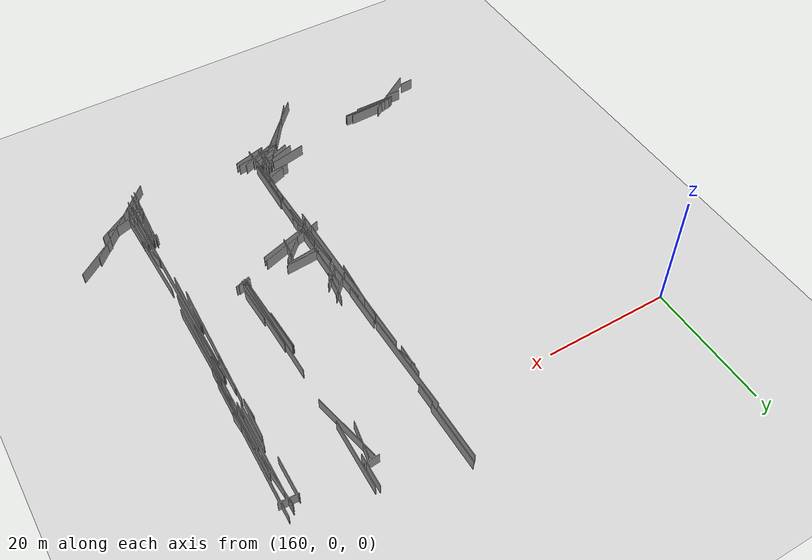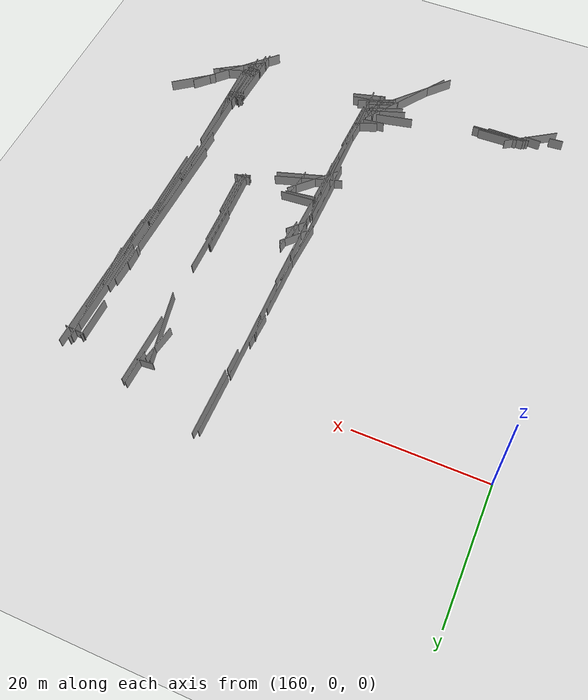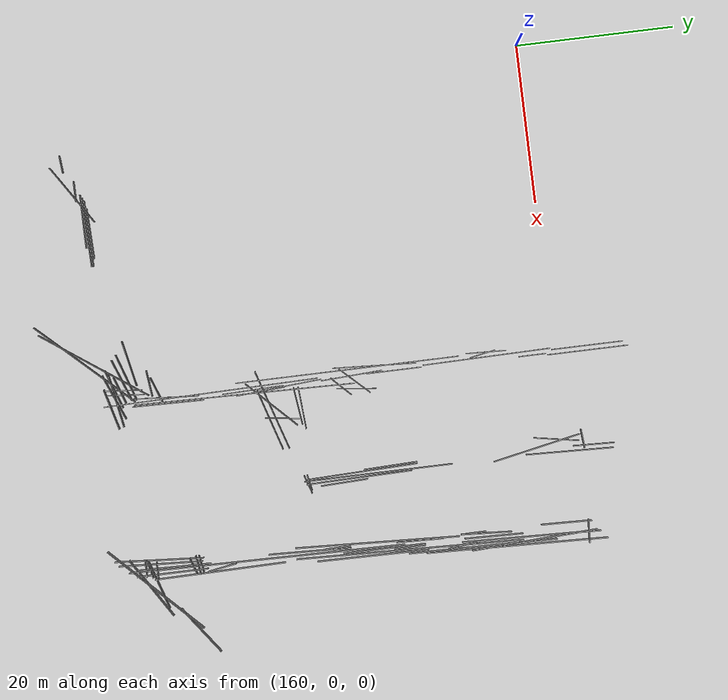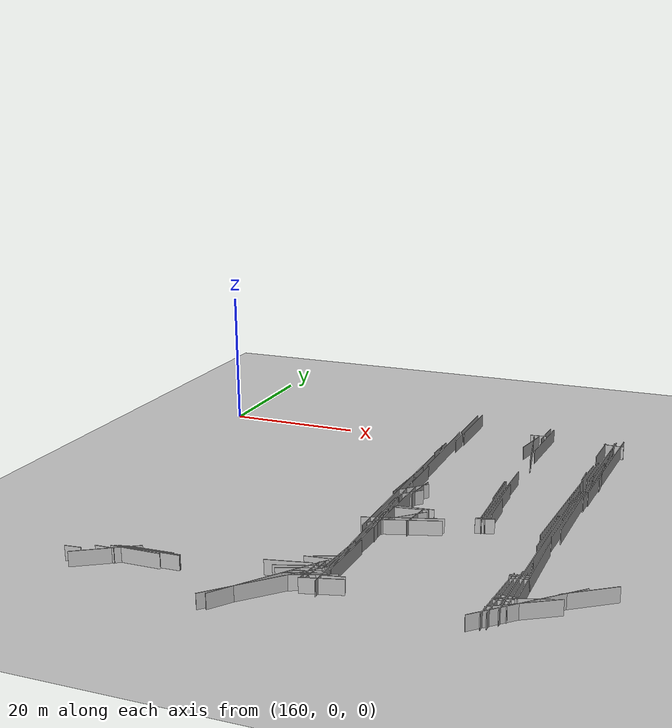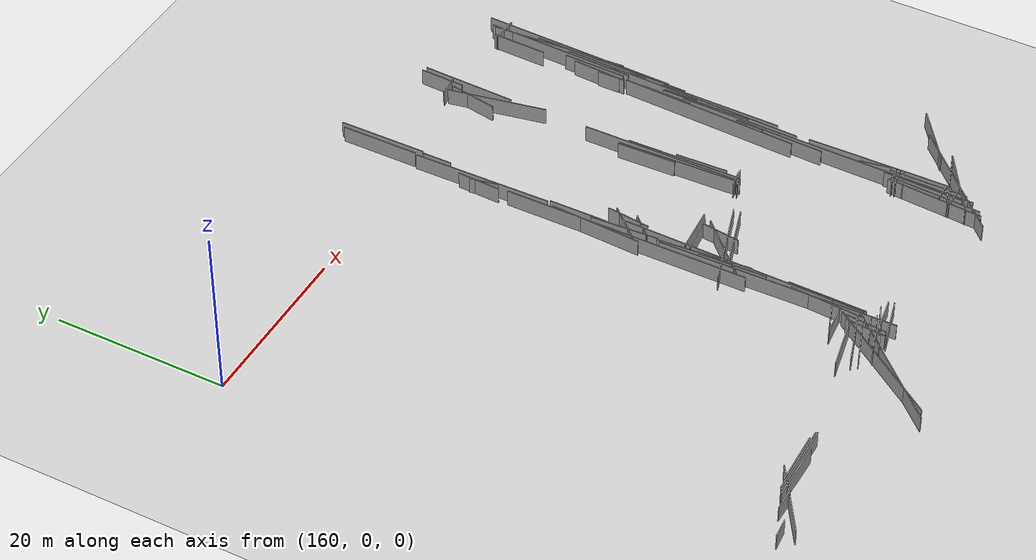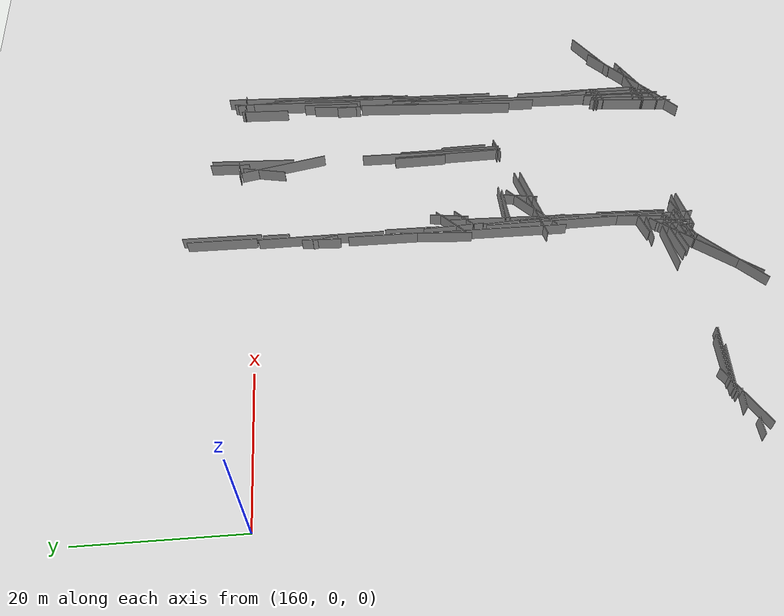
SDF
<sdf version="1.6">
 <world name="slam_world">
  <model name="ground_plane">
   <static>true</static>
   <link name="link">
    <collision name="collision">
     <geometry><plane><normal>0 0 1</normal><size>100 100</size></plane></geometry>
    </collision>
    <visual name="visual">
     <geometry><plane><normal>0 0 1</normal><size>100 100</size></plane></geometry>
     <material>
      <ambient>0.8 0.8 0.8 1</ambient>
      <diffuse>0.8 0.8 0.8 1</diffuse>
      <specular>0.8 0.8 0.8 1</specular>
     </material>
    </visual>
   </link>
  </model>
  <model name="wall_0">
   <static>true</static>
   <pose>221.60000000000002 -20.999999999999993 1.0 0 0 1.5360880485696218</pose>
   <link name="link">
    <collision name="collision">
     <geometry><box><size>28.817355881482253 0.1 2.0</size></box></geometry>
    </collision>
    <visual name="visual">
     <geometry><box><size>28.817355881482253 0.1 2.0</size></box></geometry>
     <material><ambient>0.5 0.5 0.5 1</ambient><diffuse>0.7 0.7 0.7 1</diffuse></material>
    </visual>
   </link>
  </model>
  <model name="wall_4">
   <static>true</static>
   <pose>221.8 -5.599999999999987 1.0 0 0 1.5367186152078876</pose>
   <link name="link">
    <collision name="collision">
     <geometry><box><size>17.610224302944022 0.1 2.0</size></box></geometry>
    </collision>
    <visual name="visual">
     <geometry><box><size>17.610224302944022 0.1 2.0</size></box></geometry>
     <material><ambient>0.5 0.5 0.5 1</ambient><diffuse>0.7 0.7 0.7 1</diffuse></material>
    </visual>
   </link>
  </model>
  <model name="wall_14">
   <static>true</static>
   <pose>198.70000000000005 4.300000000000011 1.0 0 0 1.5707963267948966</pose>
   <link name="link">
    <collision name="collision"><geometry><box><size>9.0 0.1 2.0</size></box></geometry></collision>
    <visual name="visual">
     <geometry><box><size>9.0 0.1 2.0</size></box></geometry>
     <material><ambient>0.5 0.5 0.5 1</ambient><diffuse>0.7 0.7 0.7 1</diffuse></material>
    </visual>
   </link>
  </model>
  <model name="wall_25">
   <static>true</static>
   <pose>198.90000000000003 -20.299999999999997 1.0 0 0 1.5707963267948966</pose>
   <link name="link">
    <collision name="collision"><geometry><box><size>7.0 0.1 2.0</size></box></geometry></collision>
    <visual name="visual">
     <geometry><box><size>7.0 0.1 2.0</size></box></geometry>
     <material><ambient>0.5 0.5 0.5 1</ambient><diffuse>0.7 0.7 0.7 1</diffuse></material>
    </visual>
   </link>
  </model>
  <model name="wall_32">
   <static>true</static>
   <pose>198.10000000000002 -26.199999999999996 1.0 0 0 1.5707963267948966</pose>
   <link name="link">
    <collision name="collision"><geometry><box><size>28.39999999999999 0.1 2.0</size></box></geometry></collision>
    <visual name="visual">
     <geometry><box><size>28.39999999999999 0.1 2.0</size></box></geometry>
     <material><ambient>0.5 0.5 0.5 1</ambient><diffuse>0.7 0.7 0.7 1</diffuse></material>
    </visual>
   </link>
  </model>
  <model name="wall_54">
   <static>true</static>
   <pose>220.60000000000002 -39.099999999999994 1.0 0 0 1.5536551486562873</pose>
   <link name="link">
    <collision name="collision">
     <geometry><box><size>35.005142479355804 0.1 2.0</size></box></geometry>
    </collision>
    <visual name="visual">
     <geometry><box><size>35.005142479355804 0.1 2.0</size></box></geometry>
     <material><ambient>0.5 0.5 0.5 1</ambient><diffuse>0.7 0.7 0.7 1</diffuse></material>
    </visual>
   </link>
  </model>
  <model name="wall_58">
   <static>true</static>
   <pose>221.20000000000002 -10.299999999999997 1.0 0 0 1.5437758776076334</pose>
   <link name="link">
    <collision name="collision"><geometry><box><size>7.402702209328704 0.1 2.0</size></box></geometry></collision>
    <visual name="visual">
     <geometry><box><size>7.402702209328704 0.1 2.0</size></box></geometry>
     <material><ambient>0.5 0.5 0.5 1</ambient><diffuse>0.7 0.7 0.7 1</diffuse></material>
    </visual>
   </link>
  </model>
  <model name="wall_69">
   <static>true</static>
   <pose>198.90000000000003 -43.6 1.0 0 0 -1.556091504417046</pose>
   <link name="link">
    <collision name="collision">
     <geometry><box><size>27.202941017470888 0.1 2.0</size></box></geometry>
    </collision>
    <visual name="visual">
     <geometry><box><size>27.202941017470888 0.1 2.0</size></box></geometry>
     <material><ambient>0.5 0.5 0.5 1</ambient><diffuse>0.7 0.7 0.7 1</diffuse></material>
    </visual>
   </link>
  </model>
  <model name="wall_121">
   <static>true</static>
   <pose>220.4 -48.4 1.0 0 0 0.3487710035839075</pose>
   <link name="link">
    <collision name="collision">
     <geometry><box><size>2.3409399821439134 0.1 2.0</size></box></geometry>
    </collision>
    <visual name="visual">
     <geometry><box><size>2.3409399821439134 0.1 2.0</size></box></geometry>
     <material><ambient>0.5 0.5 0.5 1</ambient><diffuse>0.7 0.7 0.7 1</diffuse></material>
    </visual>
   </link>
  </model>
  <model name="wall_123">
   <static>true</static>
   <pose>198.60000000000002 -8.5 1.0 0 0 -1.5584512749506694</pose>
   <link name="link">
    <collision name="collision">
     <geometry><box><size>16.201234520862897 0.1 2.0</size></box></geometry>
    </collision>
    <visual name="visual">
     <geometry><box><size>16.201234520862897 0.1 2.0</size></box></geometry>
     <material><ambient>0.5 0.5 0.5 1</ambient><diffuse>0.7 0.7 0.7 1</diffuse></material>
    </visual>
   </link>
  </model>
  <model name="wall_134">
   <static>true</static>
   <pose>220.60000000000002 -0.9999999999999858 1.0 0 0 1.5395564933646213</pose>
   <link name="link">
    <collision name="collision"><geometry><box><size>6.403124237432856 0.1 2.0</size></box></geometry></collision>
    <visual name="visual">
     <geometry><box><size>6.403124237432856 0.1 2.0</size></box></geometry>
     <material><ambient>0.5 0.5 0.5 1</ambient><diffuse>0.7 0.7 0.7 1</diffuse></material>
    </visual>
   </link>
  </model>
  <model name="wall_147">
   <static>true</static>
   <pose>220.70000000000002 -11.199999999999996 1.0 0 0 1.508377516798934</pose>
   <link name="link">
    <collision name="collision"><geometry><box><size>6.412487816752552 0.1 2.0</size></box></geometry></collision>
    <visual name="visual">
     <geometry><box><size>6.412487816752552 0.1 2.0</size></box></geometry>
     <material><ambient>0.5 0.5 0.5 1</ambient><diffuse>0.7 0.7 0.7 1</diffuse></material>
    </visual>
   </link>
  </model>
  <model name="wall_192">
   <static>true</static>
   <pose>198.00000000000003 -22.699999999999996 1.0 0 0 1.5142528898500824</pose>
   <link name="link">
    <collision name="collision">
     <geometry><box><size>10.616967551989605 0.1 2.0</size></box></geometry>
    </collision>
    <visual name="visual">
     <geometry><box><size>10.616967551989605 0.1 2.0</size></box></geometry>
     <material><ambient>0.5 0.5 0.5 1</ambient><diffuse>0.7 0.7 0.7 1</diffuse></material>
    </visual>
   </link>
  </model>
  <model name="wall_203">
   <static>true</static>
   <pose>195.70000000000002 -54.0 1.0 0 0 0.32175055439663935</pose>
   <link name="link">
    <collision name="collision"><geometry><box><size>6.324555320336812 0.1 2.0</size></box></geometry></collision>
    <visual name="visual">
     <geometry><box><size>6.324555320336812 0.1 2.0</size></box></geometry>
     <material><ambient>0.5 0.5 0.5 1</ambient><diffuse>0.7 0.7 0.7 1</diffuse></material>
    </visual>
   </link>
  </model>
  <model name="wall_210">
   <static>true</static>
   <pose>176.9 -56.699999999999996 1.0 0 0 0.02272336084164136</pose>
   <link name="link">
    <collision name="collision"><geometry><box><size>8.802272433866166 0.1 2.0</size></box></geometry></collision>
    <visual name="visual">
     <geometry><box><size>8.802272433866166 0.1 2.0</size></box></geometry>
     <material><ambient>0.5 0.5 0.5 1</ambient><diffuse>0.7 0.7 0.7 1</diffuse></material>
    </visual>
   </link>
  </model>
  <model name="wall_216">
   <static>true</static>
   <pose>199.3 4.300000000000011 1.0 0 0 1.5707963267948966</pose>
   <link name="link">
    <collision name="collision">
     <geometry><box><size>10.199999999999989 0.1 2.0</size></box></geometry>
    </collision>
    <visual name="visual">
     <geometry><box><size>10.199999999999989 0.1 2.0</size></box></geometry>
     <material><ambient>0.5 0.5 0.5 1</ambient><diffuse>0.7 0.7 0.7 1</diffuse></material>
    </visual>
   </link>
  </model>
  <model name="wall_227">
   <static>true</static>
   <pose>220.4 -53.0 1.0 0 0 0.0</pose>
   <link name="link">
    <collision name="collision">
     <geometry><box><size>2.1999999999999886 0.1 2.0</size></box></geometry>
    </collision>
    <visual name="visual">
     <geometry><box><size>2.1999999999999886 0.1 2.0</size></box></geometry>
     <material><ambient>0.5 0.5 0.5 1</ambient><diffuse>0.7 0.7 0.7 1</diffuse></material>
    </visual>
   </link>
  </model>
  <model name="wall_228">
   <static>true</static>
   <pose>199.10000000000002 -2.6999999999999957 1.0 0 0 -1.5707963267948966</pose>
   <link name="link">
    <collision name="collision">
     <geometry><box><size>3.3999999999999915 0.1 2.0</size></box></geometry>
    </collision>
    <visual name="visual">
     <geometry><box><size>3.3999999999999915 0.1 2.0</size></box></geometry>
     <material><ambient>0.5 0.5 0.5 1</ambient><diffuse>0.7 0.7 0.7 1</diffuse></material>
    </visual>
   </link>
  </model>
  <model name="wall_233">
   <static>true</static>
   <pose>222.50000000000003 -53.99999999999999 1.0 0 0 0.5633162614919699</pose>
   <link name="link">
    <collision name="collision"><geometry><box><size>8.988882021697663 0.1 2.0</size></box></geometry></collision>
    <visual name="visual">
     <geometry><box><size>8.988882021697663 0.1 2.0</size></box></geometry>
     <material><ambient>0.5 0.5 0.5 1</ambient><diffuse>0.7 0.7 0.7 1</diffuse></material>
    </visual>
   </link>
  </model>
  <model name="wall_235">
   <static>true</static>
   <pose>193.50000000000003 -58.99999999999999 1.0 0 0 0.8210972760767721</pose>
   <link name="link">
    <collision name="collision">
     <geometry><box><size>15.849290204927174 0.1 2.0</size></box></geometry>
    </collision>
    <visual name="visual">
     <geometry><box><size>15.849290204927174 0.1 2.0</size></box></geometry>
     <material><ambient>0.5 0.5 0.5 1</ambient><diffuse>0.7 0.7 0.7 1</diffuse></material>
    </visual>
   </link>
  </model>
  <model name="wall_239">
   <static>true</static>
   <pose>199.20000000000002 -38.29999999999999 1.0 0 0 -1.5451609182732207</pose>
   <link name="link">
    <collision name="collision"><geometry><box><size>7.80256368125246 0.1 2.0</size></box></geometry></collision>
    <visual name="visual">
     <geometry><box><size>7.80256368125246 0.1 2.0</size></box></geometry>
     <material><ambient>0.5 0.5 0.5 1</ambient><diffuse>0.7 0.7 0.7 1</diffuse></material>
    </visual>
   </link>
  </model>
  <model name="wall_245">
   <static>true</static>
   <pose>211.10000000000002 -25.799999999999997 1.0 0 0 -1.5422326689561383</pose>
   <link name="link">
    <collision name="collision">
     <geometry><box><size>14.005713120009275 0.1 2.0</size></box></geometry>
    </collision>
    <visual name="visual">
     <geometry><box><size>14.005713120009275 0.1 2.0</size></box></geometry>
     <material><ambient>0.5 0.5 0.5 1</ambient><diffuse>0.7 0.7 0.7 1</diffuse></material>
    </visual>
   </link>
  </model>
  <model name="wall_257">
   <static>true</static>
   <pose>220.3 -29.999999999999993 1.0 0 0 1.5707963267948966</pose>
   <link name="link">
    <collision name="collision"><geometry><box><size>3.200000000000003 0.1 2.0</size></box></geometry></collision>
    <visual name="visual">
     <geometry><box><size>3.200000000000003 0.1 2.0</size></box></geometry>
     <material><ambient>0.5 0.5 0.5 1</ambient><diffuse>0.7 0.7 0.7 1</diffuse></material>
    </visual>
   </link>
  </model>
  <model name="wall_258">
   <static>true</static>
   <pose>220.3 -47.8 1.0 0 0 0.16514867741463068</pose>
   <link name="link">
    <collision name="collision">
     <geometry><box><size>2.4331050121192663 0.1 2.0</size></box></geometry>
    </collision>
    <visual name="visual">
     <geometry><box><size>2.4331050121192663 0.1 2.0</size></box></geometry>
     <material><ambient>0.5 0.5 0.5 1</ambient><diffuse>0.7 0.7 0.7 1</diffuse></material>
    </visual>
   </link>
  </model>
  <model name="wall_273">
   <static>true</static>
   <pose>222.3 -11.79999999999999 1.0 0 0 1.5495229407708366</pose>
   <link name="link">
    <collision name="collision"><geometry><box><size>18.80425483766905 0.1 2.0</size></box></geometry></collision>
    <visual name="visual">
     <geometry><box><size>18.80425483766905 0.1 2.0</size></box></geometry>
     <material><ambient>0.5 0.5 0.5 1</ambient><diffuse>0.7 0.7 0.7 1</diffuse></material>
    </visual>
   </link>
  </model>
  <model name="wall_290">
   <static>true</static>
   <pose>199.60000000000002 -49.099999999999994 1.0 0 0 1.5485777614681726</pose>
   <link name="link">
    <collision name="collision"><geometry><box><size>9.00222194794152 0.1 2.0</size></box></geometry></collision>
    <visual name="visual">
     <geometry><box><size>9.00222194794152 0.1 2.0</size></box></geometry>
     <material><ambient>0.5 0.5 0.5 1</ambient><diffuse>0.7 0.7 0.7 1</diffuse></material>
    </visual>
   </link>
  </model>
  <model name="wall_300">
   <static>true</static>
   <pose>168.00000000000003 -58.9 1.0 0 0 0.09065988720074686</pose>
   <link name="link">
    <collision name="collision"><geometry><box><size>2.209072203437441 0.1 2.0</size></box></geometry></collision>
    <visual name="visual">
     <geometry><box><size>2.209072203437441 0.1 2.0</size></box></geometry>
     <material><ambient>0.5 0.5 0.5 1</ambient><diffuse>0.7 0.7 0.7 1</diffuse></material>
    </visual>
   </link>
  </model>
  <model name="wall_306">
   <static>true</static>
   <pose>221.4 -45.099999999999994 1.0 0 0 -1.5587487169407113</pose>
   <link name="link">
    <collision name="collision"><geometry><box><size>16.6012047755577 0.1 2.0</size></box></geometry></collision>
    <visual name="visual">
     <geometry><box><size>16.6012047755577 0.1 2.0</size></box></geometry>
     <material><ambient>0.5 0.5 0.5 1</ambient><diffuse>0.7 0.7 0.7 1</diffuse></material>
    </visual>
   </link>
  </model>
  <model name="wall_309">
   <static>true</static>
   <pose>220.5 -12.499999999999993 1.0 0 0 1.5707963267948966</pose>
   <link name="link">
    <collision name="collision">
     <geometry><box><size>2.6000000000000085 0.1 2.0</size></box></geometry>
    </collision>
    <visual name="visual">
     <geometry><box><size>2.6000000000000085 0.1 2.0</size></box></geometry>
     <material><ambient>0.5 0.5 0.5 1</ambient><diffuse>0.7 0.7 0.7 1</diffuse></material>
    </visual>
   </link>
  </model>
  <model name="wall_321">
   <static>true</static>
   <pose>199.50000000000003 -56.3 1.0 0 0 0.2629947316809211</pose>
   <link name="link">
    <collision name="collision"><geometry><box><size>5.385164807134495 0.1 2.0</size></box></geometry></collision>
    <visual name="visual">
     <geometry><box><size>5.385164807134495 0.1 2.0</size></box></geometry>
     <material><ambient>0.5 0.5 0.5 1</ambient><diffuse>0.7 0.7 0.7 1</diffuse></material>
    </visual>
   </link>
  </model>
  <model name="wall_327">
   <static>true</static>
   <pose>220.20000000000005 -24.999999999999993 1.0 0 0 1.522756393947134</pose>
   <link name="link">
    <collision name="collision">
     <geometry><box><size>20.824024587000466 0.1 2.0</size></box></geometry>
    </collision>
    <visual name="visual">
     <geometry><box><size>20.824024587000466 0.1 2.0</size></box></geometry>
     <material><ambient>0.5 0.5 0.5 1</ambient><diffuse>0.7 0.7 0.7 1</diffuse></material>
    </visual>
   </link>
  </model>
  <model name="wall_333">
   <static>true</static>
   <pose>220.90000000000003 -51.099999999999994 1.0 0 0 1.5707963267948966</pose>
   <link name="link">
    <collision name="collision"><geometry><box><size>9.0 0.1 2.0</size></box></geometry></collision>
    <visual name="visual">
     <geometry><box><size>9.0 0.1 2.0</size></box></geometry>
     <material><ambient>0.5 0.5 0.5 1</ambient><diffuse>0.7 0.7 0.7 1</diffuse></material>
    </visual>
   </link>
  </model>
  <model name="wall_342">
   <static>true</static>
   <pose>220.00000000000003 -54.39999999999999 1.0 0 0 0.0</pose>
   <link name="link">
    <collision name="collision">
     <geometry><box><size>2.1999999999999886 0.1 2.0</size></box></geometry>
    </collision>
    <visual name="visual">
     <geometry><box><size>2.1999999999999886 0.1 2.0</size></box></geometry>
     <material><ambient>0.5 0.5 0.5 1</ambient><diffuse>0.7 0.7 0.7 1</diffuse></material>
    </visual>
   </link>
  </model>
  <model name="wall_343">
   <static>true</static>
   <pose>177.10000000000002 -56.49999999999999 1.0 0 0 0.023805026185070344</pose>
   <link name="link">
    <collision name="collision"><geometry><box><size>8.402380615039979 0.1 2.0</size></box></geometry></collision>
    <visual name="visual">
     <geometry><box><size>8.402380615039979 0.1 2.0</size></box></geometry>
     <material><ambient>0.5 0.5 0.5 1</ambient><diffuse>0.7 0.7 0.7 1</diffuse></material>
    </visual>
   </link>
  </model>
  <model name="wall_384">
   <static>true</static>
   <pose>198.50000000000003 -55.6 1.0 0 0 0.17467219900823983</pose>
   <link name="link">
    <collision name="collision"><geometry><box><size>6.905070600652839 0.1 2.0</size></box></geometry></collision>
    <visual name="visual">
     <geometry><box><size>6.905070600652839 0.1 2.0</size></box></geometry>
     <material><ambient>0.5 0.5 0.5 1</ambient><diffuse>0.7 0.7 0.7 1</diffuse></material>
    </visual>
   </link>
  </model>
  <model name="wall_420">
   <static>true</static>
   <pose>221.10000000000002 -24.199999999999996 1.0 0 0 1.5707963267948966</pose>
   <link name="link">
    <collision name="collision">
     <geometry><box><size>10.399999999999991 0.1 2.0</size></box></geometry>
    </collision>
    <visual name="visual">
     <geometry><box><size>10.399999999999991 0.1 2.0</size></box></geometry>
     <material><ambient>0.5 0.5 0.5 1</ambient><diffuse>0.7 0.7 0.7 1</diffuse></material>
    </visual>
   </link>
  </model>
  <model name="wall_432">
   <static>true</static>
   <pose>211.5 -23.79999999999999 1.0 0 0 1.5707963267948966</pose>
   <link name="link">
    <collision name="collision">
     <geometry><box><size>18.799999999999997 0.1 2.0</size></box></geometry>
    </collision>
    <visual name="visual">
     <geometry><box><size>18.799999999999997 0.1 2.0</size></box></geometry>
     <material><ambient>0.5 0.5 0.5 1</ambient><diffuse>0.7 0.7 0.7 1</diffuse></material>
    </visual>
   </link>
  </model>
  <model name="wall_452">
   <static>true</static>
   <pose>198.8 -49.49999999999999 1.0 0 0 1.5011417530663258</pose>
   <link name="link">
    <collision name="collision"><geometry><box><size>8.620904824900933 0.1 2.0</size></box></geometry></collision>
    <visual name="visual">
     <geometry><box><size>8.620904824900933 0.1 2.0</size></box></geometry>
     <material><ambient>0.5 0.5 0.5 1</ambient><diffuse>0.7 0.7 0.7 1</diffuse></material>
    </visual>
   </link>
  </model>
  <model name="wall_486">
   <static>true</static>
   <pose>220.10000000000002 -53.9 1.0 0 0 0.24497866312686972</pose>
   <link name="link">
    <collision name="collision"><geometry><box><size>2.473863375370576 0.1 2.0</size></box></geometry></collision>
    <visual name="visual">
     <geometry><box><size>2.473863375370576 0.1 2.0</size></box></geometry>
     <material><ambient>0.5 0.5 0.5 1</ambient><diffuse>0.7 0.7 0.7 1</diffuse></material>
    </visual>
   </link>
  </model>
  <model name="wall_506">
   <static>true</static>
   <pose>197.3 -54.49999999999999 1.0 0 0 1.4840579881189166</pose>
   <link name="link">
    <collision name="collision"><geometry><box><size>4.617358552246085 0.1 2.0</size></box></geometry></collision>
    <visual name="visual">
     <geometry><box><size>4.617358552246085 0.1 2.0</size></box></geometry>
     <material><ambient>0.5 0.5 0.5 1</ambient><diffuse>0.7 0.7 0.7 1</diffuse></material>
    </visual>
   </link>
  </model>
  <model name="wall_517">
   <static>true</static>
   <pose>197.0 -55.699999999999996 1.0 0 0 0.34555558058171165</pose>
   <link name="link">
    <collision name="collision"><geometry><box><size>5.314132102234568 0.1 2.0</size></box></geometry></collision>
    <visual name="visual">
     <geometry><box><size>5.314132102234568 0.1 2.0</size></box></geometry>
     <material><ambient>0.5 0.5 0.5 1</ambient><diffuse>0.7 0.7 0.7 1</diffuse></material>
    </visual>
   </link>
  </model>
  <model name="wall_521">
   <static>true</static>
   <pose>211.90000000000003 -32.79999999999999 1.0 0 0 0.32175055439664396</pose>
   <link name="link">
    <collision name="collision"><geometry><box><size>2.529822128134681 0.1 2.0</size></box></geometry></collision>
    <visual name="visual">
     <geometry><box><size>2.529822128134681 0.1 2.0</size></box></geometry>
     <material><ambient>0.5 0.5 0.5 1</ambient><diffuse>0.7 0.7 0.7 1</diffuse></material>
    </visual>
   </link>
  </model>
  <model name="wall_525">
   <static>true</static>
   <pose>202.00000000000003 -36.199999999999996 1.0 0 0 0.30400093934014516</pose>
   <link name="link">
    <collision name="collision">
     <geometry><box><size>10.690182411914204 0.1 2.0</size></box></geometry>
    </collision>
    <visual name="visual">
     <geometry><box><size>10.690182411914204 0.1 2.0</size></box></geometry>
     <material><ambient>0.5 0.5 0.5 1</ambient><diffuse>0.7 0.7 0.7 1</diffuse></material>
    </visual>
   </link>
  </model>
  <model name="wall_539">
   <static>true</static>
   <pose>222.8 -53.5 1.0 0 0 0.7853981633974483</pose>
   <link name="link">
    <collision name="collision">
     <geometry><box><size>15.556349186104045 0.1 2.0</size></box></geometry>
    </collision>
    <visual name="visual">
     <geometry><box><size>15.556349186104045 0.1 2.0</size></box></geometry>
     <material><ambient>0.5 0.5 0.5 1</ambient><diffuse>0.7 0.7 0.7 1</diffuse></material>
    </visual>
   </link>
  </model>
  <model name="wall_545">
   <static>true</static>
   <pose>199.60000000000002 -39.39999999999999 1.0 0 0 1.5493710343463611</pose>
   <link name="link">
    <collision name="collision">
     <geometry><box><size>28.006427833624194 0.1 2.0</size></box></geometry>
    </collision>
    <visual name="visual">
     <geometry><box><size>28.006427833624194 0.1 2.0</size></box></geometry>
     <material><ambient>0.5 0.5 0.5 1</ambient><diffuse>0.7 0.7 0.7 1</diffuse></material>
    </visual>
   </link>
  </model>
  <model name="wall_556">
   <static>true</static>
   <pose>211.80000000000004 -26.299999999999997 1.0 0 0 -1.5558720618048125</pose>
   <link name="link">
    <collision name="collision">
     <geometry><box><size>13.401492454200769 0.1 2.0</size></box></geometry>
    </collision>
    <visual name="visual">
     <geometry><box><size>13.401492454200769 0.1 2.0</size></box></geometry>
     <material><ambient>0.5 0.5 0.5 1</ambient><diffuse>0.7 0.7 0.7 1</diffuse></material>
    </visual>
   </link>
  </model>
  <model name="wall_559">
   <static>true</static>
   <pose>211.70000000000002 0.5 1.0 0 0 1.534448705775873</pose>
   <link name="link">
    <collision name="collision"><geometry><box><size>11.00727032465361 0.1 2.0</size></box></geometry></collision>
    <visual name="visual">
     <geometry><box><size>11.00727032465361 0.1 2.0</size></box></geometry>
     <material><ambient>0.5 0.5 0.5 1</ambient><diffuse>0.7 0.7 0.7 1</diffuse></material>
    </visual>
   </link>
  </model>
  <model name="wall_570">
   <static>true</static>
   <pose>196.8 -51.199999999999996 1.0 0 0 0.11710874456686259</pose>
   <link name="link">
    <collision name="collision">
     <geometry><box><size>3.4234485537247146 0.1 2.0</size></box></geometry>
    </collision>
    <visual name="visual">
     <geometry><box><size>3.4234485537247146 0.1 2.0</size></box></geometry>
     <material><ambient>0.5 0.5 0.5 1</ambient><diffuse>0.7 0.7 0.7 1</diffuse></material>
    </visual>
   </link>
  </model>
  <model name="wall_582">
   <static>true</static>
   <pose>222.20000000000002 -53.0 1.0 0 0 0.3120421215625338</pose>
   <link name="link">
    <collision name="collision"><geometry><box><size>6.514598989960922 0.1 2.0</size></box></geometry></collision>
    <visual name="visual">
     <geometry><box><size>6.514598989960922 0.1 2.0</size></box></geometry>
     <material><ambient>0.5 0.5 0.5 1</ambient><diffuse>0.7 0.7 0.7 1</diffuse></material>
    </visual>
   </link>
  </model>
  <model name="wall_585">
   <static>true</static>
   <pose>222.70000000000002 -7.5 1.0 0 0 1.5360277349388138</pose>
   <link name="link">
    <collision name="collision">
     <geometry><box><size>23.013908837917995 0.1 2.0</size></box></geometry>
    </collision>
    <visual name="visual">
     <geometry><box><size>23.013908837917995 0.1 2.0</size></box></geometry>
     <material><ambient>0.5 0.5 0.5 1</ambient><diffuse>0.7 0.7 0.7 1</diffuse></material>
    </visual>
   </link>
  </model>
  <model name="wall_611">
   <static>true</static>
   <pose>210.80000000000004 -3.5999999999999943 1.0 0 0 -1.3768371795350043</pose>
   <link name="link">
    <collision name="collision">
     <geometry><box><size>11.414026458704207 0.1 2.0</size></box></geometry>
    </collision>
    <visual name="visual">
     <geometry><box><size>11.414026458704207 0.1 2.0</size></box></geometry>
     <material><ambient>0.5 0.5 0.5 1</ambient><diffuse>0.7 0.7 0.7 1</diffuse></material>
    </visual>
   </link>
  </model>
  <model name="wall_635">
   <static>true</static>
   <pose>219.10000000000002 -52.6 1.0 0 0 1.4994888620096103</pose>
   <link name="link">
    <collision name="collision"><geometry><box><size>11.22853507809456 0.1 2.0</size></box></geometry></collision>
    <visual name="visual">
     <geometry><box><size>11.22853507809456 0.1 2.0</size></box></geometry>
     <material><ambient>0.5 0.5 0.5 1</ambient><diffuse>0.7 0.7 0.7 1</diffuse></material>
    </visual>
   </link>
  </model>
  <model name="wall_642">
   <static>true</static>
   <pose>197.20000000000002 -54.99999999999999 1.0 0 0 0.3392926144540423</pose>
   <link name="link">
    <collision name="collision">
     <geometry><box><size>3.6055512754640224 0.1 2.0</size></box></geometry>
    </collision>
    <visual name="visual">
     <geometry><box><size>3.6055512754640224 0.1 2.0</size></box></geometry>
     <material><ambient>0.5 0.5 0.5 1</ambient><diffuse>0.7 0.7 0.7 1</diffuse></material>
    </visual>
   </link>
  </model>
  <model name="wall_644">
   <static>true</static>
   <pose>197.70000000000002 -50.4 1.0 0 0 0.3587706702705742</pose>
   <link name="link">
    <collision name="collision">
     <geometry><box><size>3.4176014981270026 0.1 2.0</size></box></geometry>
    </collision>
    <visual name="visual">
     <geometry><box><size>3.4176014981270026 0.1 2.0</size></box></geometry>
     <material><ambient>0.5 0.5 0.5 1</ambient><diffuse>0.7 0.7 0.7 1</diffuse></material>
    </visual>
   </link>
  </model>
  <model name="wall_646">
   <static>true</static>
   <pose>222.30000000000004 -5.199999999999989 1.0 0 0 -1.5208379310729532</pose>
   <link name="link">
    <collision name="collision"><geometry><box><size>16.01998751560063 0.1 2.0</size></box></geometry></collision>
    <visual name="visual">
     <geometry><box><size>16.01998751560063 0.1 2.0</size></box></geometry>
     <material><ambient>0.5 0.5 0.5 1</ambient><diffuse>0.7 0.7 0.7 1</diffuse></material>
    </visual>
   </link>
  </model>
  <model name="wall_653">
   <static>true</static>
   <pose>175.50000000000003 -57.0 1.0 0 0 0.0</pose>
   <link name="link">
    <collision name="collision"><geometry><box><size>6.800000000000011 0.1 2.0</size></box></geometry></collision>
    <visual name="visual">
     <geometry><box><size>6.800000000000011 0.1 2.0</size></box></geometry>
     <material><ambient>0.5 0.5 0.5 1</ambient><diffuse>0.7 0.7 0.7 1</diffuse></material>
    </visual>
   </link>
  </model>
  <model name="wall_692">
   <static>true</static>
   <pose>220.20000000000002 -50.79999999999999 1.0 0 0 1.5490606199531052</pose>
   <link name="link">
    <collision name="collision"><geometry><box><size>9.202173656261875 0.1 2.0</size></box></geometry></collision>
    <visual name="visual">
     <geometry><box><size>9.202173656261875 0.1 2.0</size></box></geometry>
     <material><ambient>0.5 0.5 0.5 1</ambient><diffuse>0.7 0.7 0.7 1</diffuse></material>
    </visual>
   </link>
  </model>
  <model name="wall_705">
   <static>true</static>
   <pose>210.0 -0.9999999999999929 1.0 0 0 1.3940874707248603</pose>
   <link name="link">
    <collision name="collision"><geometry><box><size>5.688585061331166 0.1 2.0</size></box></geometry></collision>
    <visual name="visual">
     <geometry><box><size>5.688585061331166 0.1 2.0</size></box></geometry>
     <material><ambient>0.5 0.5 0.5 1</ambient><diffuse>0.7 0.7 0.7 1</diffuse></material>
    </visual>
   </link>
  </model>
  <model name="wall_706">
   <static>true</static>
   <pose>200.60000000000002 -25.299999999999997 1.0 0 0 1.4513674007765536</pose>
   <link name="link">
    <collision name="collision">
     <geometry><box><size>5.0358713248056715 0.1 2.0</size></box></geometry>
    </collision>
    <visual name="visual">
     <geometry><box><size>5.0358713248056715 0.1 2.0</size></box></geometry>
     <material><ambient>0.5 0.5 0.5 1</ambient><diffuse>0.7 0.7 0.7 1</diffuse></material>
    </visual>
   </link>
  </model>
  <model name="wall_715">
   <static>true</static>
   <pose>199.20000000000002 -33.89999999999999 1.0 0 0 -1.5011417530663322</pose>
   <link name="link">
    <collision name="collision"><geometry><box><size>8.620904824900915 0.1 2.0</size></box></geometry></collision>
    <visual name="visual">
     <geometry><box><size>8.620904824900915 0.1 2.0</size></box></geometry>
     <material><ambient>0.5 0.5 0.5 1</ambient><diffuse>0.7 0.7 0.7 1</diffuse></material>
    </visual>
   </link>
  </model>
  <model name="wall_721">
   <static>true</static>
   <pose>212.20000000000002 -28.19999999999999 1.0 0 0 -1.5374753309166513</pose>
   <link name="link">
    <collision name="collision"><geometry><box><size>6.003332407921453 0.1 2.0</size></box></geometry></collision>
    <visual name="visual">
     <geometry><box><size>6.003332407921453 0.1 2.0</size></box></geometry>
     <material><ambient>0.5 0.5 0.5 1</ambient><diffuse>0.7 0.7 0.7 1</diffuse></material>
    </visual>
   </link>
  </model>
  <model name="wall_722">
   <static>true</static>
   <pose>199.50000000000003 -37.29999999999999 1.0 0 0 -1.5063694873693376</pose>
   <link name="link">
    <collision name="collision"><geometry><box><size>6.212889826803631 0.1 2.0</size></box></geometry></collision>
    <visual name="visual">
     <geometry><box><size>6.212889826803631 0.1 2.0</size></box></geometry>
     <material><ambient>0.5 0.5 0.5 1</ambient><diffuse>0.7 0.7 0.7 1</diffuse></material>
    </visual>
   </link>
  </model>
  <model name="wall_727">
   <static>true</static>
   <pose>220.3 -33.599999999999994 1.0 0 0 1.5323537367737108</pose>
   <link name="link">
    <collision name="collision">
     <geometry><box><size>10.407689465006156 0.1 2.0</size></box></geometry>
    </collision>
    <visual name="visual">
     <geometry><box><size>10.407689465006156 0.1 2.0</size></box></geometry>
     <material><ambient>0.5 0.5 0.5 1</ambient><diffuse>0.7 0.7 0.7 1</diffuse></material>
    </visual>
   </link>
  </model>
  <model name="wall_749">
   <static>true</static>
   <pose>221.80000000000004 -25.699999999999996 1.0 0 0 1.5567127509720373</pose>
   <link name="link">
    <collision name="collision">
     <geometry><box><size>14.201408380861388 0.1 2.0</size></box></geometry>
    </collision>
    <visual name="visual">
     <geometry><box><size>14.201408380861388 0.1 2.0</size></box></geometry>
     <material><ambient>0.5 0.5 0.5 1</ambient><diffuse>0.7 0.7 0.7 1</diffuse></material>
    </visual>
   </link>
  </model>
  <model name="wall_753">
   <static>true</static>
   <pose>211.20000000000002 3.6000000000000085 1.0 0 0 1.532353736773711</pose>
   <link name="link">
    <collision name="collision"><geometry><box><size>5.203844732503091 0.1 2.0</size></box></geometry></collision>
    <visual name="visual">
     <geometry><box><size>5.203844732503091 0.1 2.0</size></box></geometry>
     <material><ambient>0.5 0.5 0.5 1</ambient><diffuse>0.7 0.7 0.7 1</diffuse></material>
    </visual>
   </link>
  </model>
  <model name="wall_765">
   <static>true</static>
   <pose>198.20000000000002 -8.999999999999993 1.0 0 0 -1.3854483767992123</pose>
   <link name="link">
    <collision name="collision">
     <geometry><box><size>3.2557641192199376 0.1 2.0</size></box></geometry>
    </collision>
    <visual name="visual">
     <geometry><box><size>3.2557641192199376 0.1 2.0</size></box></geometry>
     <material><ambient>0.5 0.5 0.5 1</ambient><diffuse>0.7 0.7 0.7 1</diffuse></material>
    </visual>
   </link>
  </model>
  <model name="wall_771">
   <static>true</static>
   <pose>177.10000000000002 -56.3 1.0 0 0 0.031239833430266612</pose>
   <link name="link">
    <collision name="collision"><geometry><box><size>6.403124237432825 0.1 2.0</size></box></geometry></collision>
    <visual name="visual">
     <geometry><box><size>6.403124237432825 0.1 2.0</size></box></geometry>
     <material><ambient>0.5 0.5 0.5 1</ambient><diffuse>0.7 0.7 0.7 1</diffuse></material>
    </visual>
   </link>
  </model>
  <model name="wall_787">
   <static>true</static>
   <pose>193.70000000000002 -57.89999999999999 1.0 0 0 0.9549263748553707</pose>
   <link name="link">
    <collision name="collision">
     <geometry><box><size>15.926079241294756 0.1 2.0</size></box></geometry>
    </collision>
    <visual name="visual">
     <geometry><box><size>15.926079241294756 0.1 2.0</size></box></geometry>
     <material><ambient>0.5 0.5 0.5 1</ambient><diffuse>0.7 0.7 0.7 1</diffuse></material>
    </visual>
   </link>
  </model>
  <model name="wall_842">
   <static>true</static>
   <pose>221.00000000000003 -44.8 1.0 0 0 -1.4056476493802788</pose>
   <link name="link">
    <collision name="collision">
     <geometry><box><size>3.6496575181789206 0.1 2.0</size></box></geometry>
    </collision>
    <visual name="visual">
     <geometry><box><size>3.6496575181789206 0.1 2.0</size></box></geometry>
     <material><ambient>0.5 0.5 0.5 1</ambient><diffuse>0.7 0.7 0.7 1</diffuse></material>
    </visual>
   </link>
  </model>
  <model name="wall_857">
   <static>true</static>
   <pose>172.0 -57.99999999999999 1.0 0 0 0.575424650535286</pose>
   <link name="link">
    <collision name="collision"><geometry><box><size>8.820430828479958 0.1 2.0</size></box></geometry></collision>
    <visual name="visual">
     <geometry><box><size>8.820430828479958 0.1 2.0</size></box></geometry>
     <material><ambient>0.5 0.5 0.5 1</ambient><diffuse>0.7 0.7 0.7 1</diffuse></material>
    </visual>
   </link>
  </model>
  <model name="wall_866">
   <static>true</static>
   <pose>198.90000000000003 -25.699999999999996 1.0 0 0 -1.5195591593914808</pose>
   <link name="link">
    <collision name="collision"><geometry><box><size>7.81024967590665 0.1 2.0</size></box></geometry></collision>
    <visual name="visual">
     <geometry><box><size>7.81024967590665 0.1 2.0</size></box></geometry>
     <material><ambient>0.5 0.5 0.5 1</ambient><diffuse>0.7 0.7 0.7 1</diffuse></material>
    </visual>
   </link>
  </model>
  <model name="wall_870">
   <static>true</static>
   <pose>198.00000000000003 -8.5 1.0 0 0 1.5308176396716089</pose>
   <link name="link">
    <collision name="collision"><geometry><box><size>5.003998401278721 0.1 2.0</size></box></geometry></collision>
    <visual name="visual">
     <geometry><box><size>5.003998401278721 0.1 2.0</size></box></geometry>
     <material><ambient>0.5 0.5 0.5 1</ambient><diffuse>0.7 0.7 0.7 1</diffuse></material>
    </visual>
   </link>
  </model>
  <model name="wall_874">
   <static>true</static>
   <pose>201.3 -36.19999999999999 1.0 0 0 0.7853981633974483</pose>
   <link name="link">
    <collision name="collision"><geometry><box><size>8.48528137423857 0.1 2.0</size></box></geometry></collision>
    <visual name="visual">
     <geometry><box><size>8.48528137423857 0.1 2.0</size></box></geometry>
     <material><ambient>0.5 0.5 0.5 1</ambient><diffuse>0.7 0.7 0.7 1</diffuse></material>
    </visual>
   </link>
  </model>
  <model name="wall_881">
   <static>true</static>
   <pose>196.00000000000003 -54.599999999999994 1.0 0 0 0.3547056520109383</pose>
   <link name="link">
    <collision name="collision"><geometry><box><size>5.758472019555219 0.1 2.0</size></box></geometry></collision>
    <visual name="visual">
     <geometry><box><size>5.758472019555219 0.1 2.0</size></box></geometry>
     <material><ambient>0.5 0.5 0.5 1</ambient><diffuse>0.7 0.7 0.7 1</diffuse></material>
    </visual>
   </link>
  </model>
  <model name="wall_882">
   <static>true</static>
   <pose>201.9 -32.89999999999999 1.0 0 0 0.12435499454675998</pose>
   <link name="link">
    <collision name="collision"><geometry><box><size>4.83735464897914 0.1 2.0</size></box></geometry></collision>
    <visual name="visual">
     <geometry><box><size>4.83735464897914 0.1 2.0</size></box></geometry>
     <material><ambient>0.5 0.5 0.5 1</ambient><diffuse>0.7 0.7 0.7 1</diffuse></material>
    </visual>
   </link>
  </model>
  <model name="wall_885">
   <static>true</static>
   <pose>220.60000000000002 -19.599999999999994 1.0 0 0 1.5374753309166418</pose>
   <link name="link">
    <collision name="collision"><geometry><box><size>6.003332407921455 0.1 2.0</size></box></geometry></collision>
    <visual name="visual">
     <geometry><box><size>6.003332407921455 0.1 2.0</size></box></geometry>
     <material><ambient>0.5 0.5 0.5 1</ambient><diffuse>0.7 0.7 0.7 1</diffuse></material>
    </visual>
   </link>
  </model>
  <model name="wall_889">
   <static>true</static>
   <pose>198.00000000000003 -55.8 1.0 0 0 0.39234014421551594</pose>
   <link name="link">
    <collision name="collision"><geometry><box><size>6.276941930590099 0.1 2.0</size></box></geometry></collision>
    <visual name="visual">
     <geometry><box><size>6.276941930590099 0.1 2.0</size></box></geometry>
     <material><ambient>0.5 0.5 0.5 1</ambient><diffuse>0.7 0.7 0.7 1</diffuse></material>
    </visual>
   </link>
  </model>
  <model name="wall_893">
   <static>true</static>
   <pose>200.10000000000002 -27.199999999999996 1.0 0 0 0.7853981633974513</pose>
   <link name="link">
    <collision name="collision"><geometry><box><size>3.394112549695406 0.1 2.0</size></box></geometry></collision>
    <visual name="visual">
     <geometry><box><size>3.394112549695406 0.1 2.0</size></box></geometry>
     <material><ambient>0.5 0.5 0.5 1</ambient><diffuse>0.7 0.7 0.7 1</diffuse></material>
    </visual>
   </link>
  </model>
  <model name="wall_930">
   <static>true</static>
   <pose>228.5 -48.39999999999999 1.0 0 0 0.6327488350021837</pose>
   <link name="link">
    <collision name="collision"><geometry><box><size>7.440430095095313 0.1 2.0</size></box></geometry></collision>
    <visual name="visual">
     <geometry><box><size>7.440430095095313 0.1 2.0</size></box></geometry>
     <material><ambient>0.5 0.5 0.5 1</ambient><diffuse>0.7 0.7 0.7 1</diffuse></material>
    </visual>
   </link>
  </model>
  <model name="wall_947">
   <static>true</static>
   <pose>211.70000000000005 -32.599999999999994 1.0 0 0 0.1973955598498835</pose>
   <link name="link">
    <collision name="collision"><geometry><box><size>2.039607805437115 0.1 2.0</size></box></geometry></collision>
    <visual name="visual">
     <geometry><box><size>2.039607805437115 0.1 2.0</size></box></geometry>
     <material><ambient>0.5 0.5 0.5 1</ambient><diffuse>0.7 0.7 0.7 1</diffuse></material>
    </visual>
   </link>
  </model>
  <model name="wall_963">
   <static>true</static>
   <pose>171.60000000000002 -57.599999999999994 1.0 0 0 0.0</pose>
   <link name="link">
    <collision name="collision">
     <geometry><box><size>2.6000000000000227 0.1 2.0</size></box></geometry>
    </collision>
    <visual name="visual">
     <geometry><box><size>2.6000000000000227 0.1 2.0</size></box></geometry>
     <material><ambient>0.5 0.5 0.5 1</ambient><diffuse>0.7 0.7 0.7 1</diffuse></material>
    </visual>
   </link>
  </model>
  <model name="wall_964">
   <static>true</static>
   <pose>194.00000000000003 -53.4 1.0 0 0 0.20401797959254866</pose>
   <link name="link">
    <collision name="collision"><geometry><box><size>5.92283715798435 0.1 2.0</size></box></geometry></collision>
    <visual name="visual">
     <geometry><box><size>5.92283715798435 0.1 2.0</size></box></geometry>
     <material><ambient>0.5 0.5 0.5 1</ambient><diffuse>0.7 0.7 0.7 1</diffuse></material>
    </visual>
   </link>
  </model>
  <model name="wall_971">
   <static>true</static>
   <pose>221.3 -21.0 1.0 0 0 -1.5707963267948966</pose>
   <link name="link">
    <collision name="collision"><geometry><box><size>4.0 0.1 2.0</size></box></geometry></collision>
    <visual name="visual">
     <geometry><box><size>4.0 0.1 2.0</size></box></geometry>
     <material><ambient>0.5 0.5 0.5 1</ambient><diffuse>0.7 0.7 0.7 1</diffuse></material>
    </visual>
   </link>
  </model>
  <model name="wall_1009">
   <static>true</static>
   <pose>197.90000000000003 -54.3 1.0 0 0 1.4840579881189162</pose>
   <link name="link">
    <collision name="collision">
     <geometry><box><size>4.6173585522460705 0.1 2.0</size></box></geometry>
    </collision>
    <visual name="visual">
     <geometry><box><size>4.6173585522460705 0.1 2.0</size></box></geometry>
     <material><ambient>0.5 0.5 0.5 1</ambient><diffuse>0.7 0.7 0.7 1</diffuse></material>
    </visual>
   </link>
  </model>
  <model name="wall_1023">
   <static>true</static>
   <pose>219.60000000000002 -52.49999999999999 1.0 0 0 1.514252889850077</pose>
   <link name="link">
    <collision name="collision">
     <geometry><box><size>10.616967551989609 0.1 2.0</size></box></geometry>
    </collision>
    <visual name="visual">
     <geometry><box><size>10.616967551989609 0.1 2.0</size></box></geometry>
     <material><ambient>0.5 0.5 0.5 1</ambient><diffuse>0.7 0.7 0.7 1</diffuse></material>
    </visual>
   </link>
  </model>
  <model name="wall_1026">
   <static>true</static>
   <pose>202.20000000000002 -32.39999999999999 1.0 0 0 0.07393903765794092</pose>
   <link name="link">
    <collision name="collision"><geometry><box><size>5.414794548272388 0.1 2.0</size></box></geometry></collision>
    <visual name="visual">
     <geometry><box><size>5.414794548272388 0.1 2.0</size></box></geometry>
     <material><ambient>0.5 0.5 0.5 1</ambient><diffuse>0.7 0.7 0.7 1</diffuse></material>
    </visual>
   </link>
  </model>
  <model name="wall_1038">
   <static>true</static>
   <pose>203.20000000000002 -36.599999999999994 1.0 0 0 0.2984989315861795</pose>
   <link name="link">
    <collision name="collision"><geometry><box><size>8.160882305241278 0.1 2.0</size></box></geometry></collision>
    <visual name="visual">
     <geometry><box><size>8.160882305241278 0.1 2.0</size></box></geometry>
     <material><ambient>0.5 0.5 0.5 1</ambient><diffuse>0.7 0.7 0.7 1</diffuse></material>
    </visual>
   </link>
  </model>
  <model name="wall_1049">
   <static>true</static>
   <pose>221.90000000000003 -14.199999999999989 1.0 0 0 -1.4711276743037403</pose>
   <link name="link">
    <collision name="collision"><geometry><box><size>4.019950248448354 0.1 2.0</size></box></geometry></collision>
    <visual name="visual">
     <geometry><box><size>4.019950248448354 0.1 2.0</size></box></geometry>
     <material><ambient>0.5 0.5 0.5 1</ambient><diffuse>0.7 0.7 0.7 1</diffuse></material>
    </visual>
   </link>
  </model>
  <model name="wall_1079">
   <static>true</static>
   <pose>210.3 2.3000000000000114 1.0 0 0 0.0831412318884373</pose>
   <link name="link">
    <collision name="collision">
     <geometry><box><size>2.4083189157584353 0.1 2.0</size></box></geometry>
    </collision>
    <visual name="visual">
     <geometry><box><size>2.4083189157584353 0.1 2.0</size></box></geometry>
     <material><ambient>0.5 0.5 0.5 1</ambient><diffuse>0.7 0.7 0.7 1</diffuse></material>
    </visual>
   </link>
  </model>
  <model name="wall_1084">
   <static>true</static>
   <pose>199.60000000000002 -25.39999999999999 1.0 0 0 0.8139618212362109</pose>
   <link name="link">
    <collision name="collision"><geometry><box><size>4.951767361255959 0.1 2.0</size></box></geometry></collision>
    <visual name="visual">
     <geometry><box><size>4.951767361255959 0.1 2.0</size></box></geometry>
     <material><ambient>0.5 0.5 0.5 1</ambient><diffuse>0.7 0.7 0.7 1</diffuse></material>
    </visual>
   </link>
  </model>
  <model name="wall_1085">
   <static>true</static>
   <pose>203.20000000000002 -34.99999999999999 1.0 0 0 1.4352686128094032</pose>
   <link name="link">
    <collision name="collision"><geometry><box><size>4.440720662234891 0.1 2.0</size></box></geometry></collision>
    <visual name="visual">
     <geometry><box><size>4.440720662234891 0.1 2.0</size></box></geometry>
     <material><ambient>0.5 0.5 0.5 1</ambient><diffuse>0.7 0.7 0.7 1</diffuse></material>
    </visual>
   </link>
  </model>
  <model name="wall_1114">
   <static>true</static>
   <pose>210.80000000000004 -22.199999999999996 1.0 0 0 -1.5413930385908932</pose>
   <link name="link">
    <collision name="collision"><geometry><box><size>6.802940540677976 0.1 2.0</size></box></geometry></collision>
    <visual name="visual">
     <geometry><box><size>6.802940540677976 0.1 2.0</size></box></geometry>
     <material><ambient>0.5 0.5 0.5 1</ambient><diffuse>0.7 0.7 0.7 1</diffuse></material>
    </visual>
   </link>
  </model>
  <model name="wall_1135">
   <static>true</static>
   <pose>220.20000000000002 -47.39999999999999 1.0 0 0 0.1798534997924817</pose>
   <link name="link">
    <collision name="collision">
     <geometry><box><size>2.2360679774997796 0.1 2.0</size></box></geometry>
    </collision>
    <visual name="visual">
     <geometry><box><size>2.2360679774997796 0.1 2.0</size></box></geometry>
     <material><ambient>0.5 0.5 0.5 1</ambient><diffuse>0.7 0.7 0.7 1</diffuse></material>
    </visual>
   </link>
  </model>
  <model name="wall_1138">
   <static>true</static>
   <pose>222.0 1.7000000000000028 1.0 0 0 -0.06656816377582947</pose>
   <link name="link">
    <collision name="collision">
     <geometry><box><size>3.0066592756745827 0.1 2.0</size></box></geometry>
    </collision>
    <visual name="visual">
     <geometry><box><size>3.0066592756745827 0.1 2.0</size></box></geometry>
     <material><ambient>0.5 0.5 0.5 1</ambient><diffuse>0.7 0.7 0.7 1</diffuse></material>
    </visual>
   </link>
  </model>
 </world>
</sdf>
